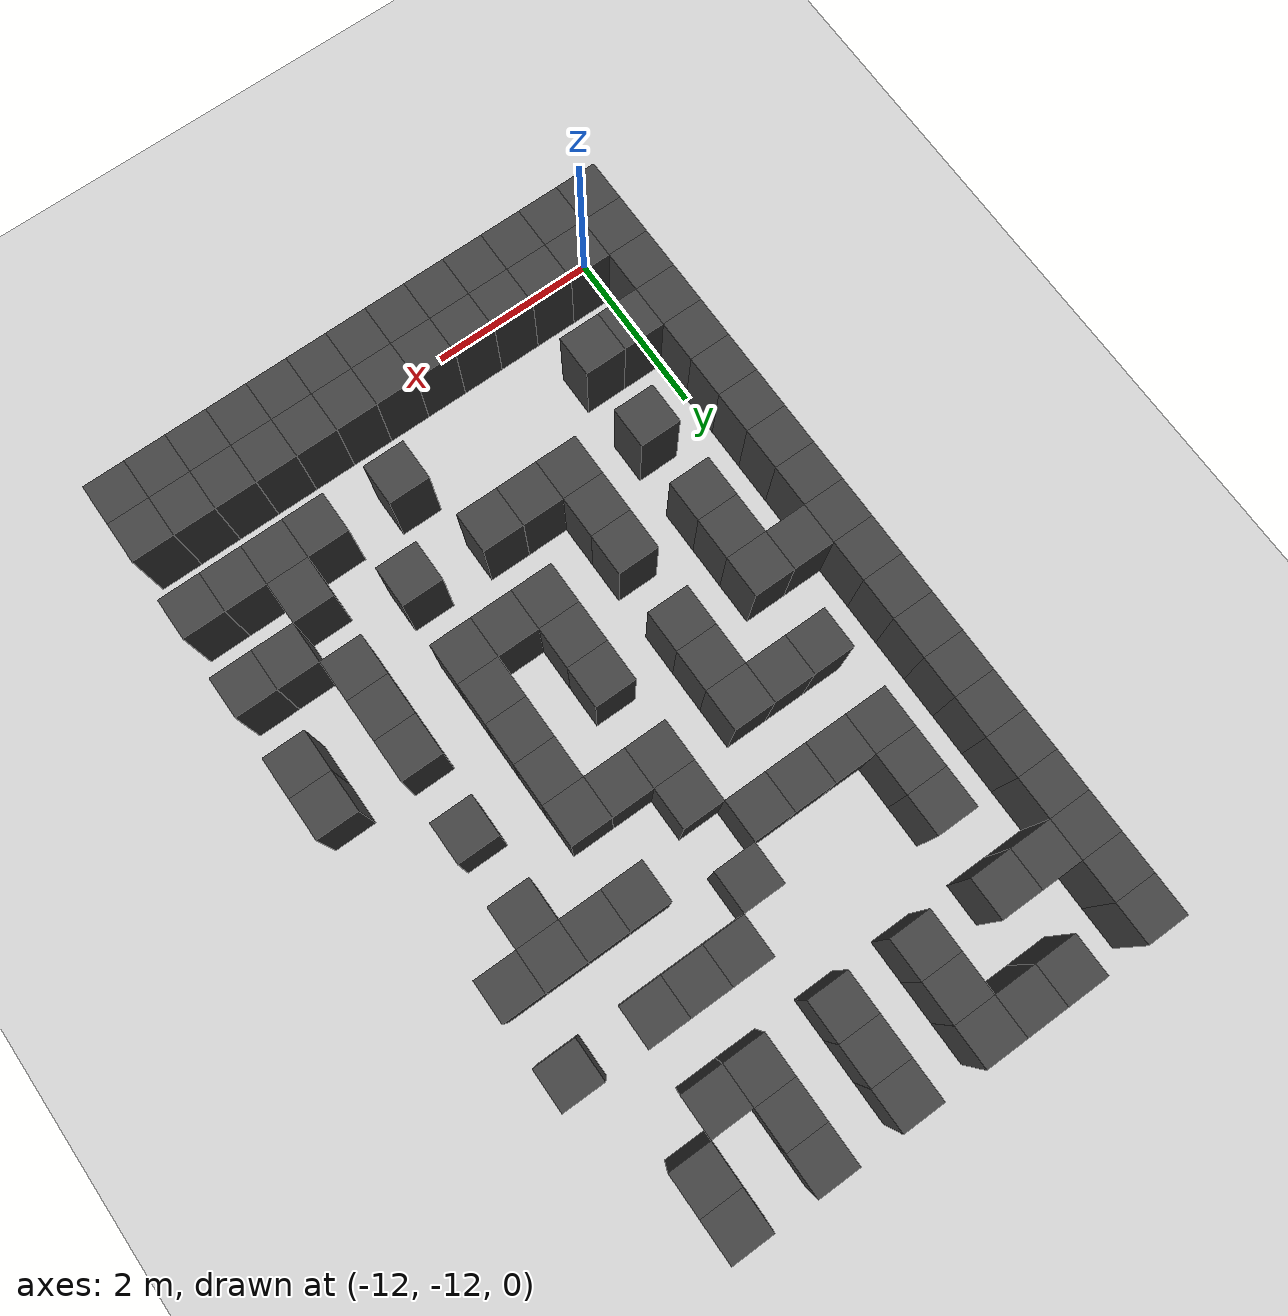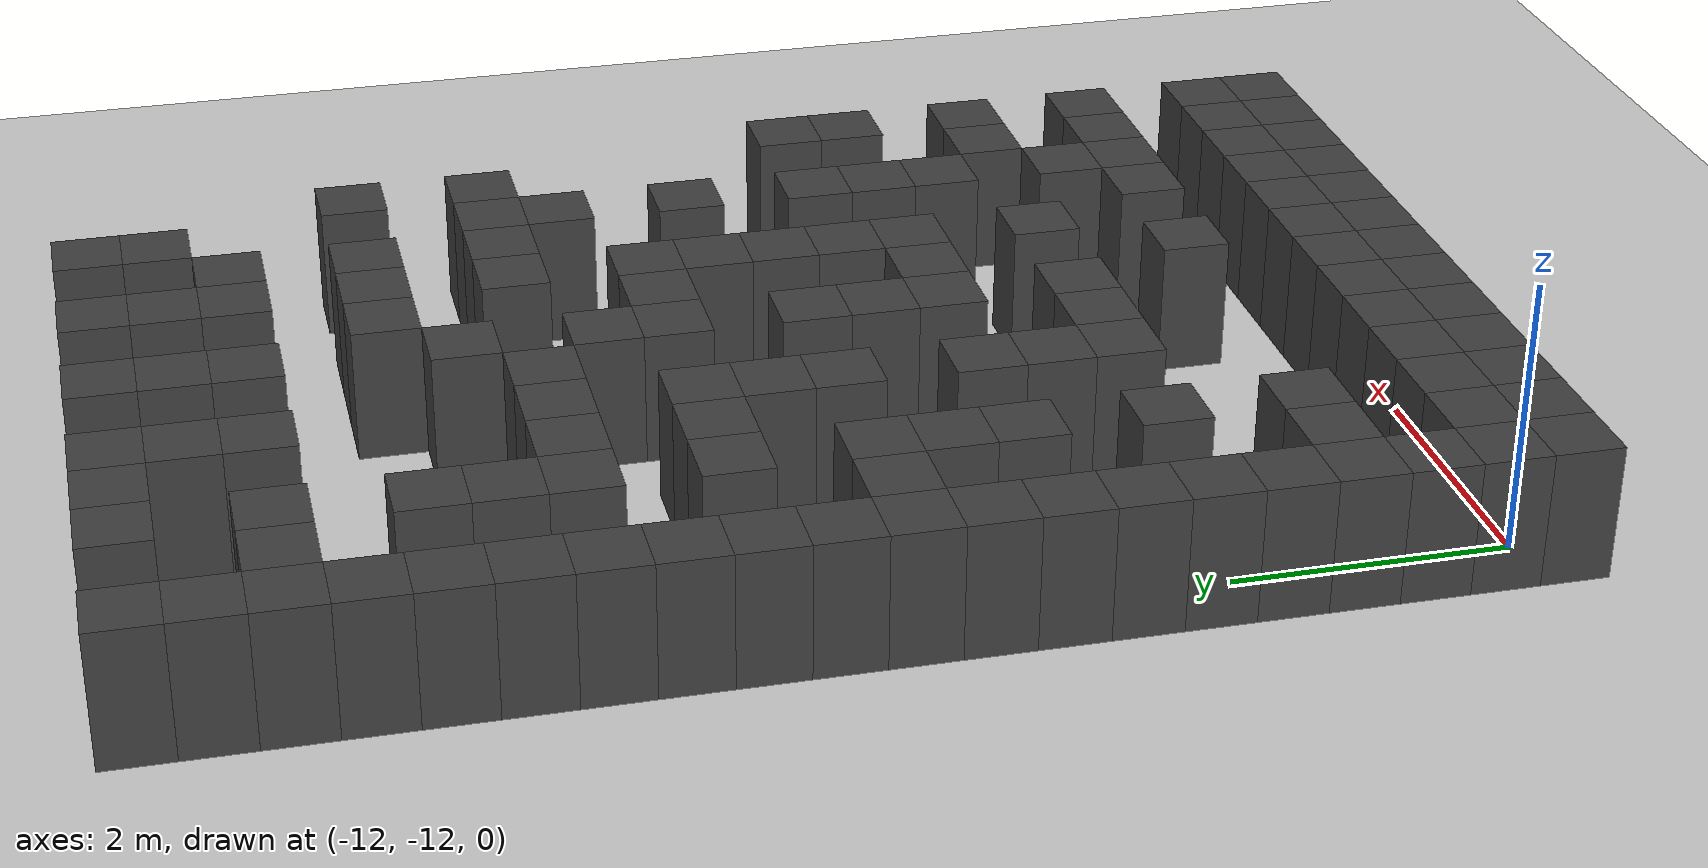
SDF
<sdf version="1.7">
 <world name="map_15293">
  <model name="ground_plane">
   <static>true</static>
   <link name="link">
    <collision name="collision">
     <geometry><plane><normal>0 0 1</normal><size>200 200</size></plane></geometry>
    </collision>
    <visual name="visual">
     <geometry><plane><normal>0 0 1</normal><size>200 200</size></plane></geometry>
     <material><ambient>0.8 0.8 0.8 1</ambient><diffuse>0.8 0.8 0.8 1</diffuse></material>
    </visual>
   </link>
  </model>
  <model name="maze_environment">
   <static>true</static>
   <link name="wall_702">
    <pose>-12.250 -2.750 0.500 0 0 0</pose>
    <collision name="col"><geometry><box><size>0.5 0.5 1.0</size></box></geometry></collision>
    <visual name="vis">
     <geometry><box><size>0.5 0.5 1.0</size></box></geometry>
     <material><ambient>0.15 0.15 0.15 1</ambient><diffuse>0.25 0.25 0.25 1</diffuse></material>
    </visual>
   </link>
   <link name="wall_703">
    <pose>-11.250 -2.750 0.500 0 0 0</pose>
    <collision name="col"><geometry><box><size>0.5 0.5 1.0</size></box></geometry></collision>
    <visual name="vis">
     <geometry><box><size>0.5 0.5 1.0</size></box></geometry>
     <material><ambient>0.15 0.15 0.15 1</ambient><diffuse>0.25 0.25 0.25 1</diffuse></material>
    </visual>
   </link>
   <link name="wall_704">
    <pose>-10.750 -2.750 0.500 0 0 0</pose>
    <collision name="col"><geometry><box><size>0.5 0.5 1.0</size></box></geometry></collision>
    <visual name="vis">
     <geometry><box><size>0.5 0.5 1.0</size></box></geometry>
     <material><ambient>0.15 0.15 0.15 1</ambient><diffuse>0.25 0.25 0.25 1</diffuse></material>
    </visual>
   </link>
   <link name="wall_705">
    <pose>-10.250 -2.750 0.500 0 0 0</pose>
    <collision name="col"><geometry><box><size>0.5 0.5 1.0</size></box></geometry></collision>
    <visual name="vis">
     <geometry><box><size>0.5 0.5 1.0</size></box></geometry>
     <material><ambient>0.15 0.15 0.15 1</ambient><diffuse>0.25 0.25 0.25 1</diffuse></material>
    </visual>
   </link>
   <link name="wall_706">
    <pose>-9.250 -2.750 0.500 0 0 0</pose>
    <collision name="col"><geometry><box><size>0.5 0.5 1.0</size></box></geometry></collision>
    <visual name="vis">
     <geometry><box><size>0.5 0.5 1.0</size></box></geometry>
     <material><ambient>0.15 0.15 0.15 1</ambient><diffuse>0.25 0.25 0.25 1</diffuse></material>
    </visual>
   </link>
   <link name="wall_707">
    <pose>-8.250 -2.750 0.500 0 0 0</pose>
    <collision name="col"><geometry><box><size>0.5 0.5 1.0</size></box></geometry></collision>
    <visual name="vis">
     <geometry><box><size>0.5 0.5 1.0</size></box></geometry>
     <material><ambient>0.15 0.15 0.15 1</ambient><diffuse>0.25 0.25 0.25 1</diffuse></material>
    </visual>
   </link>
   <link name="wall_708">
    <pose>-7.250 -2.750 0.500 0 0 0</pose>
    <collision name="col"><geometry><box><size>0.5 0.5 1.0</size></box></geometry></collision>
    <visual name="vis">
     <geometry><box><size>0.5 0.5 1.0</size></box></geometry>
     <material><ambient>0.15 0.15 0.15 1</ambient><diffuse>0.25 0.25 0.25 1</diffuse></material>
    </visual>
   </link>
   <link name="wall_737">
    <pose>-12.250 -3.250 0.500 0 0 0</pose>
    <collision name="col"><geometry><box><size>0.5 0.5 1.0</size></box></geometry></collision>
    <visual name="vis">
     <geometry><box><size>0.5 0.5 1.0</size></box></geometry>
     <material><ambient>0.15 0.15 0.15 1</ambient><diffuse>0.25 0.25 0.25 1</diffuse></material>
    </visual>
   </link>
   <link name="wall_738">
    <pose>-10.250 -3.250 0.500 0 0 0</pose>
    <collision name="col"><geometry><box><size>0.5 0.5 1.0</size></box></geometry></collision>
    <visual name="vis">
     <geometry><box><size>0.5 0.5 1.0</size></box></geometry>
     <material><ambient>0.15 0.15 0.15 1</ambient><diffuse>0.25 0.25 0.25 1</diffuse></material>
    </visual>
   </link>
   <link name="wall_739">
    <pose>-9.250 -3.250 0.500 0 0 0</pose>
    <collision name="col"><geometry><box><size>0.5 0.5 1.0</size></box></geometry></collision>
    <visual name="vis">
     <geometry><box><size>0.5 0.5 1.0</size></box></geometry>
     <material><ambient>0.15 0.15 0.15 1</ambient><diffuse>0.25 0.25 0.25 1</diffuse></material>
    </visual>
   </link>
   <link name="wall_740">
    <pose>-8.250 -3.250 0.500 0 0 0</pose>
    <collision name="col"><geometry><box><size>0.5 0.5 1.0</size></box></geometry></collision>
    <visual name="vis">
     <geometry><box><size>0.5 0.5 1.0</size></box></geometry>
     <material><ambient>0.15 0.15 0.15 1</ambient><diffuse>0.25 0.25 0.25 1</diffuse></material>
    </visual>
   </link>
   <link name="wall_741">
    <pose>-7.250 -3.250 0.500 0 0 0</pose>
    <collision name="col"><geometry><box><size>0.5 0.5 1.0</size></box></geometry></collision>
    <visual name="vis">
     <geometry><box><size>0.5 0.5 1.0</size></box></geometry>
     <material><ambient>0.15 0.15 0.15 1</ambient><diffuse>0.25 0.25 0.25 1</diffuse></material>
    </visual>
   </link>
   <link name="wall_750">
    <pose>-12.250 -3.750 0.500 0 0 0</pose>
    <collision name="col"><geometry><box><size>0.5 0.5 1.0</size></box></geometry></collision>
    <visual name="vis">
     <geometry><box><size>0.5 0.5 1.0</size></box></geometry>
     <material><ambient>0.15 0.15 0.15 1</ambient><diffuse>0.25 0.25 0.25 1</diffuse></material>
    </visual>
   </link>
   <link name="wall_751">
    <pose>-11.750 -3.750 0.500 0 0 0</pose>
    <collision name="col"><geometry><box><size>0.5 0.5 1.0</size></box></geometry></collision>
    <visual name="vis">
     <geometry><box><size>0.5 0.5 1.0</size></box></geometry>
     <material><ambient>0.15 0.15 0.15 1</ambient><diffuse>0.25 0.25 0.25 1</diffuse></material>
    </visual>
   </link>
   <link name="wall_752">
    <pose>-11.250 -3.750 0.500 0 0 0</pose>
    <collision name="col"><geometry><box><size>0.5 0.5 1.0</size></box></geometry></collision>
    <visual name="vis">
     <geometry><box><size>0.5 0.5 1.0</size></box></geometry>
     <material><ambient>0.15 0.15 0.15 1</ambient><diffuse>0.25 0.25 0.25 1</diffuse></material>
    </visual>
   </link>
   <link name="wall_753">
    <pose>-10.250 -3.750 0.500 0 0 0</pose>
    <collision name="col"><geometry><box><size>0.5 0.5 1.0</size></box></geometry></collision>
    <visual name="vis">
     <geometry><box><size>0.5 0.5 1.0</size></box></geometry>
     <material><ambient>0.15 0.15 0.15 1</ambient><diffuse>0.25 0.25 0.25 1</diffuse></material>
    </visual>
   </link>
   <link name="wall_754">
    <pose>-9.250 -3.750 0.500 0 0 0</pose>
    <collision name="col"><geometry><box><size>0.5 0.5 1.0</size></box></geometry></collision>
    <visual name="vis">
     <geometry><box><size>0.5 0.5 1.0</size></box></geometry>
     <material><ambient>0.15 0.15 0.15 1</ambient><diffuse>0.25 0.25 0.25 1</diffuse></material>
    </visual>
   </link>
   <link name="wall_755">
    <pose>-8.250 -3.750 0.500 0 0 0</pose>
    <collision name="col"><geometry><box><size>0.5 0.5 1.0</size></box></geometry></collision>
    <visual name="vis">
     <geometry><box><size>0.5 0.5 1.0</size></box></geometry>
     <material><ambient>0.15 0.15 0.15 1</ambient><diffuse>0.25 0.25 0.25 1</diffuse></material>
    </visual>
   </link>
   <link name="wall_756">
    <pose>-7.750 -3.750 0.500 0 0 0</pose>
    <collision name="col"><geometry><box><size>0.5 0.5 1.0</size></box></geometry></collision>
    <visual name="vis">
     <geometry><box><size>0.5 0.5 1.0</size></box></geometry>
     <material><ambient>0.15 0.15 0.15 1</ambient><diffuse>0.25 0.25 0.25 1</diffuse></material>
    </visual>
   </link>
   <link name="wall_781">
    <pose>-12.250 -4.250 0.500 0 0 0</pose>
    <collision name="col"><geometry><box><size>0.5 0.5 1.0</size></box></geometry></collision>
    <visual name="vis">
     <geometry><box><size>0.5 0.5 1.0</size></box></geometry>
     <material><ambient>0.15 0.15 0.15 1</ambient><diffuse>0.25 0.25 0.25 1</diffuse></material>
    </visual>
   </link>
   <link name="wall_792">
    <pose>-12.250 -4.750 0.500 0 0 0</pose>
    <collision name="col"><geometry><box><size>0.5 0.5 1.0</size></box></geometry></collision>
    <visual name="vis">
     <geometry><box><size>0.5 0.5 1.0</size></box></geometry>
     <material><ambient>0.15 0.15 0.15 1</ambient><diffuse>0.25 0.25 0.25 1</diffuse></material>
    </visual>
   </link>
   <link name="wall_793">
    <pose>-11.250 -4.750 0.500 0 0 0</pose>
    <collision name="col"><geometry><box><size>0.5 0.5 1.0</size></box></geometry></collision>
    <visual name="vis">
     <geometry><box><size>0.5 0.5 1.0</size></box></geometry>
     <material><ambient>0.15 0.15 0.15 1</ambient><diffuse>0.25 0.25 0.25 1</diffuse></material>
    </visual>
   </link>
   <link name="wall_794">
    <pose>-8.750 -4.750 0.500 0 0 0</pose>
    <collision name="col"><geometry><box><size>0.5 0.5 1.0</size></box></geometry></collision>
    <visual name="vis">
     <geometry><box><size>0.5 0.5 1.0</size></box></geometry>
     <material><ambient>0.15 0.15 0.15 1</ambient><diffuse>0.25 0.25 0.25 1</diffuse></material>
    </visual>
   </link>
   <link name="wall_795">
    <pose>-8.250 -4.750 0.500 0 0 0</pose>
    <collision name="col"><geometry><box><size>0.5 0.5 1.0</size></box></geometry></collision>
    <visual name="vis">
     <geometry><box><size>0.5 0.5 1.0</size></box></geometry>
     <material><ambient>0.15 0.15 0.15 1</ambient><diffuse>0.25 0.25 0.25 1</diffuse></material>
    </visual>
   </link>
   <link name="wall_796">
    <pose>-7.750 -4.750 0.500 0 0 0</pose>
    <collision name="col"><geometry><box><size>0.5 0.5 1.0</size></box></geometry></collision>
    <visual name="vis">
     <geometry><box><size>0.5 0.5 1.0</size></box></geometry>
     <material><ambient>0.15 0.15 0.15 1</ambient><diffuse>0.25 0.25 0.25 1</diffuse></material>
    </visual>
   </link>
   <link name="wall_797">
    <pose>-6.750 -4.750 0.500 0 0 0</pose>
    <collision name="col"><geometry><box><size>0.5 0.5 1.0</size></box></geometry></collision>
    <visual name="vis">
     <geometry><box><size>0.5 0.5 1.0</size></box></geometry>
     <material><ambient>0.15 0.15 0.15 1</ambient><diffuse>0.25 0.25 0.25 1</diffuse></material>
    </visual>
   </link>
   <link name="wall_819">
    <pose>-12.250 -5.250 0.500 0 0 0</pose>
    <collision name="col"><geometry><box><size>0.5 0.5 1.0</size></box></geometry></collision>
    <visual name="vis">
     <geometry><box><size>0.5 0.5 1.0</size></box></geometry>
     <material><ambient>0.15 0.15 0.15 1</ambient><diffuse>0.25 0.25 0.25 1</diffuse></material>
    </visual>
   </link>
   <link name="wall_820">
    <pose>-11.250 -5.250 0.500 0 0 0</pose>
    <collision name="col"><geometry><box><size>0.5 0.5 1.0</size></box></geometry></collision>
    <visual name="vis">
     <geometry><box><size>0.5 0.5 1.0</size></box></geometry>
     <material><ambient>0.15 0.15 0.15 1</ambient><diffuse>0.25 0.25 0.25 1</diffuse></material>
    </visual>
   </link>
   <link name="wall_821">
    <pose>-9.250 -5.250 0.500 0 0 0</pose>
    <collision name="col"><geometry><box><size>0.5 0.5 1.0</size></box></geometry></collision>
    <visual name="vis">
     <geometry><box><size>0.5 0.5 1.0</size></box></geometry>
     <material><ambient>0.15 0.15 0.15 1</ambient><diffuse>0.25 0.25 0.25 1</diffuse></material>
    </visual>
   </link>
   <link name="wall_835">
    <pose>-12.250 -5.750 0.500 0 0 0</pose>
    <collision name="col"><geometry><box><size>0.5 0.5 1.0</size></box></geometry></collision>
    <visual name="vis">
     <geometry><box><size>0.5 0.5 1.0</size></box></geometry>
     <material><ambient>0.15 0.15 0.15 1</ambient><diffuse>0.25 0.25 0.25 1</diffuse></material>
    </visual>
   </link>
   <link name="wall_836">
    <pose>-11.250 -5.750 0.500 0 0 0</pose>
    <collision name="col"><geometry><box><size>0.5 0.5 1.0</size></box></geometry></collision>
    <visual name="vis">
     <geometry><box><size>0.5 0.5 1.0</size></box></geometry>
     <material><ambient>0.15 0.15 0.15 1</ambient><diffuse>0.25 0.25 0.25 1</diffuse></material>
    </visual>
   </link>
   <link name="wall_837">
    <pose>-10.750 -5.750 0.500 0 0 0</pose>
    <collision name="col"><geometry><box><size>0.5 0.5 1.0</size></box></geometry></collision>
    <visual name="vis">
     <geometry><box><size>0.5 0.5 1.0</size></box></geometry>
     <material><ambient>0.15 0.15 0.15 1</ambient><diffuse>0.25 0.25 0.25 1</diffuse></material>
    </visual>
   </link>
   <link name="wall_838">
    <pose>-10.250 -5.750 0.500 0 0 0</pose>
    <collision name="col"><geometry><box><size>0.5 0.5 1.0</size></box></geometry></collision>
    <visual name="vis">
     <geometry><box><size>0.5 0.5 1.0</size></box></geometry>
     <material><ambient>0.15 0.15 0.15 1</ambient><diffuse>0.25 0.25 0.25 1</diffuse></material>
    </visual>
   </link>
   <link name="wall_839">
    <pose>-9.750 -5.750 0.500 0 0 0</pose>
    <collision name="col"><geometry><box><size>0.5 0.5 1.0</size></box></geometry></collision>
    <visual name="vis">
     <geometry><box><size>0.5 0.5 1.0</size></box></geometry>
     <material><ambient>0.15 0.15 0.15 1</ambient><diffuse>0.25 0.25 0.25 1</diffuse></material>
    </visual>
   </link>
   <link name="wall_840">
    <pose>-8.250 -5.750 0.500 0 0 0</pose>
    <collision name="col"><geometry><box><size>0.5 0.5 1.0</size></box></geometry></collision>
    <visual name="vis">
     <geometry><box><size>0.5 0.5 1.0</size></box></geometry>
     <material><ambient>0.15 0.15 0.15 1</ambient><diffuse>0.25 0.25 0.25 1</diffuse></material>
    </visual>
   </link>
   <link name="wall_841">
    <pose>-7.750 -5.750 0.500 0 0 0</pose>
    <collision name="col"><geometry><box><size>0.5 0.5 1.0</size></box></geometry></collision>
    <visual name="vis">
     <geometry><box><size>0.5 0.5 1.0</size></box></geometry>
     <material><ambient>0.15 0.15 0.15 1</ambient><diffuse>0.25 0.25 0.25 1</diffuse></material>
    </visual>
   </link>
   <link name="wall_842">
    <pose>-7.250 -5.750 0.500 0 0 0</pose>
    <collision name="col"><geometry><box><size>0.5 0.5 1.0</size></box></geometry></collision>
    <visual name="vis">
     <geometry><box><size>0.5 0.5 1.0</size></box></geometry>
     <material><ambient>0.15 0.15 0.15 1</ambient><diffuse>0.25 0.25 0.25 1</diffuse></material>
    </visual>
   </link>
   <link name="wall_843">
    <pose>-6.750 -5.750 0.500 0 0 0</pose>
    <collision name="col"><geometry><box><size>0.5 0.5 1.0</size></box></geometry></collision>
    <visual name="vis">
     <geometry><box><size>0.5 0.5 1.0</size></box></geometry>
     <material><ambient>0.15 0.15 0.15 1</ambient><diffuse>0.25 0.25 0.25 1</diffuse></material>
    </visual>
   </link>
   <link name="wall_868">
    <pose>-12.250 -6.250 0.500 0 0 0</pose>
    <collision name="col"><geometry><box><size>0.5 0.5 1.0</size></box></geometry></collision>
    <visual name="vis">
     <geometry><box><size>0.5 0.5 1.0</size></box></geometry>
     <material><ambient>0.15 0.15 0.15 1</ambient><diffuse>0.25 0.25 0.25 1</diffuse></material>
    </visual>
   </link>
   <link name="wall_869">
    <pose>-9.250 -6.250 0.500 0 0 0</pose>
    <collision name="col"><geometry><box><size>0.5 0.5 1.0</size></box></geometry></collision>
    <visual name="vis">
     <geometry><box><size>0.5 0.5 1.0</size></box></geometry>
     <material><ambient>0.15 0.15 0.15 1</ambient><diffuse>0.25 0.25 0.25 1</diffuse></material>
    </visual>
   </link>
   <link name="wall_870">
    <pose>-7.250 -6.250 0.500 0 0 0</pose>
    <collision name="col"><geometry><box><size>0.5 0.5 1.0</size></box></geometry></collision>
    <visual name="vis">
     <geometry><box><size>0.5 0.5 1.0</size></box></geometry>
     <material><ambient>0.15 0.15 0.15 1</ambient><diffuse>0.25 0.25 0.25 1</diffuse></material>
    </visual>
   </link>
   <link name="wall_880">
    <pose>-12.250 -6.750 0.500 0 0 0</pose>
    <collision name="col"><geometry><box><size>0.5 0.5 1.0</size></box></geometry></collision>
    <visual name="vis">
     <geometry><box><size>0.5 0.5 1.0</size></box></geometry>
     <material><ambient>0.15 0.15 0.15 1</ambient><diffuse>0.25 0.25 0.25 1</diffuse></material>
    </visual>
   </link>
   <link name="wall_881">
    <pose>-11.250 -6.750 0.500 0 0 0</pose>
    <collision name="col"><geometry><box><size>0.5 0.5 1.0</size></box></geometry></collision>
    <visual name="vis">
     <geometry><box><size>0.5 0.5 1.0</size></box></geometry>
     <material><ambient>0.15 0.15 0.15 1</ambient><diffuse>0.25 0.25 0.25 1</diffuse></material>
    </visual>
   </link>
   <link name="wall_882">
    <pose>-10.750 -6.750 0.500 0 0 0</pose>
    <collision name="col"><geometry><box><size>0.5 0.5 1.0</size></box></geometry></collision>
    <visual name="vis">
     <geometry><box><size>0.5 0.5 1.0</size></box></geometry>
     <material><ambient>0.15 0.15 0.15 1</ambient><diffuse>0.25 0.25 0.25 1</diffuse></material>
    </visual>
   </link>
   <link name="wall_883">
    <pose>-10.250 -6.750 0.500 0 0 0</pose>
    <collision name="col"><geometry><box><size>0.5 0.5 1.0</size></box></geometry></collision>
    <visual name="vis">
     <geometry><box><size>0.5 0.5 1.0</size></box></geometry>
     <material><ambient>0.15 0.15 0.15 1</ambient><diffuse>0.25 0.25 0.25 1</diffuse></material>
    </visual>
   </link>
   <link name="wall_884">
    <pose>-9.250 -6.750 0.500 0 0 0</pose>
    <collision name="col"><geometry><box><size>0.5 0.5 1.0</size></box></geometry></collision>
    <visual name="vis">
     <geometry><box><size>0.5 0.5 1.0</size></box></geometry>
     <material><ambient>0.15 0.15 0.15 1</ambient><diffuse>0.25 0.25 0.25 1</diffuse></material>
    </visual>
   </link>
   <link name="wall_885">
    <pose>-8.750 -6.750 0.500 0 0 0</pose>
    <collision name="col"><geometry><box><size>0.5 0.5 1.0</size></box></geometry></collision>
    <visual name="vis">
     <geometry><box><size>0.5 0.5 1.0</size></box></geometry>
     <material><ambient>0.15 0.15 0.15 1</ambient><diffuse>0.25 0.25 0.25 1</diffuse></material>
    </visual>
   </link>
   <link name="wall_886">
    <pose>-8.250 -6.750 0.500 0 0 0</pose>
    <collision name="col"><geometry><box><size>0.5 0.5 1.0</size></box></geometry></collision>
    <visual name="vis">
     <geometry><box><size>0.5 0.5 1.0</size></box></geometry>
     <material><ambient>0.15 0.15 0.15 1</ambient><diffuse>0.25 0.25 0.25 1</diffuse></material>
    </visual>
   </link>
   <link name="wall_914">
    <pose>-12.250 -7.250 0.500 0 0 0</pose>
    <collision name="col"><geometry><box><size>0.5 0.5 1.0</size></box></geometry></collision>
    <visual name="vis">
     <geometry><box><size>0.5 0.5 1.0</size></box></geometry>
     <material><ambient>0.15 0.15 0.15 1</ambient><diffuse>0.25 0.25 0.25 1</diffuse></material>
    </visual>
   </link>
   <link name="wall_915">
    <pose>-10.250 -7.250 0.500 0 0 0</pose>
    <collision name="col"><geometry><box><size>0.5 0.5 1.0</size></box></geometry></collision>
    <visual name="vis">
     <geometry><box><size>0.5 0.5 1.0</size></box></geometry>
     <material><ambient>0.15 0.15 0.15 1</ambient><diffuse>0.25 0.25 0.25 1</diffuse></material>
    </visual>
   </link>
   <link name="wall_916">
    <pose>-8.250 -7.250 0.500 0 0 0</pose>
    <collision name="col"><geometry><box><size>0.5 0.5 1.0</size></box></geometry></collision>
    <visual name="vis">
     <geometry><box><size>0.5 0.5 1.0</size></box></geometry>
     <material><ambient>0.15 0.15 0.15 1</ambient><diffuse>0.25 0.25 0.25 1</diffuse></material>
    </visual>
   </link>
   <link name="wall_917">
    <pose>-7.250 -7.250 0.500 0 0 0</pose>
    <collision name="col"><geometry><box><size>0.5 0.5 1.0</size></box></geometry></collision>
    <visual name="vis">
     <geometry><box><size>0.5 0.5 1.0</size></box></geometry>
     <material><ambient>0.15 0.15 0.15 1</ambient><diffuse>0.25 0.25 0.25 1</diffuse></material>
    </visual>
   </link>
   <link name="wall_926">
    <pose>-12.250 -7.750 0.500 0 0 0</pose>
    <collision name="col"><geometry><box><size>0.5 0.5 1.0</size></box></geometry></collision>
    <visual name="vis">
     <geometry><box><size>0.5 0.5 1.0</size></box></geometry>
     <material><ambient>0.15 0.15 0.15 1</ambient><diffuse>0.25 0.25 0.25 1</diffuse></material>
    </visual>
   </link>
   <link name="wall_927">
    <pose>-11.750 -7.750 0.500 0 0 0</pose>
    <collision name="col"><geometry><box><size>0.5 0.5 1.0</size></box></geometry></collision>
    <visual name="vis">
     <geometry><box><size>0.5 0.5 1.0</size></box></geometry>
     <material><ambient>0.15 0.15 0.15 1</ambient><diffuse>0.25 0.25 0.25 1</diffuse></material>
    </visual>
   </link>
   <link name="wall_928">
    <pose>-11.250 -7.750 0.500 0 0 0</pose>
    <collision name="col"><geometry><box><size>0.5 0.5 1.0</size></box></geometry></collision>
    <visual name="vis">
     <geometry><box><size>0.5 0.5 1.0</size></box></geometry>
     <material><ambient>0.15 0.15 0.15 1</ambient><diffuse>0.25 0.25 0.25 1</diffuse></material>
    </visual>
   </link>
   <link name="wall_929">
    <pose>-10.250 -7.750 0.500 0 0 0</pose>
    <collision name="col"><geometry><box><size>0.5 0.5 1.0</size></box></geometry></collision>
    <visual name="vis">
     <geometry><box><size>0.5 0.5 1.0</size></box></geometry>
     <material><ambient>0.15 0.15 0.15 1</ambient><diffuse>0.25 0.25 0.25 1</diffuse></material>
    </visual>
   </link>
   <link name="wall_930">
    <pose>-9.250 -7.750 0.500 0 0 0</pose>
    <collision name="col"><geometry><box><size>0.5 0.5 1.0</size></box></geometry></collision>
    <visual name="vis">
     <geometry><box><size>0.5 0.5 1.0</size></box></geometry>
     <material><ambient>0.15 0.15 0.15 1</ambient><diffuse>0.25 0.25 0.25 1</diffuse></material>
    </visual>
   </link>
   <link name="wall_931">
    <pose>-8.250 -7.750 0.500 0 0 0</pose>
    <collision name="col"><geometry><box><size>0.5 0.5 1.0</size></box></geometry></collision>
    <visual name="vis">
     <geometry><box><size>0.5 0.5 1.0</size></box></geometry>
     <material><ambient>0.15 0.15 0.15 1</ambient><diffuse>0.25 0.25 0.25 1</diffuse></material>
    </visual>
   </link>
   <link name="wall_962">
    <pose>-12.250 -8.250 0.500 0 0 0</pose>
    <collision name="col"><geometry><box><size>0.5 0.5 1.0</size></box></geometry></collision>
    <visual name="vis">
     <geometry><box><size>0.5 0.5 1.0</size></box></geometry>
     <material><ambient>0.15 0.15 0.15 1</ambient><diffuse>0.25 0.25 0.25 1</diffuse></material>
    </visual>
   </link>
   <link name="wall_963">
    <pose>-11.250 -8.250 0.500 0 0 0</pose>
    <collision name="col"><geometry><box><size>0.5 0.5 1.0</size></box></geometry></collision>
    <visual name="vis">
     <geometry><box><size>0.5 0.5 1.0</size></box></geometry>
     <material><ambient>0.15 0.15 0.15 1</ambient><diffuse>0.25 0.25 0.25 1</diffuse></material>
    </visual>
   </link>
   <link name="wall_964">
    <pose>-9.250 -8.250 0.500 0 0 0</pose>
    <collision name="col"><geometry><box><size>0.5 0.5 1.0</size></box></geometry></collision>
    <visual name="vis">
     <geometry><box><size>0.5 0.5 1.0</size></box></geometry>
     <material><ambient>0.15 0.15 0.15 1</ambient><diffuse>0.25 0.25 0.25 1</diffuse></material>
    </visual>
   </link>
   <link name="wall_965">
    <pose>-8.250 -8.250 0.500 0 0 0</pose>
    <collision name="col"><geometry><box><size>0.5 0.5 1.0</size></box></geometry></collision>
    <visual name="vis">
     <geometry><box><size>0.5 0.5 1.0</size></box></geometry>
     <material><ambient>0.15 0.15 0.15 1</ambient><diffuse>0.25 0.25 0.25 1</diffuse></material>
    </visual>
   </link>
   <link name="wall_966">
    <pose>-7.250 -8.250 0.500 0 0 0</pose>
    <collision name="col"><geometry><box><size>0.5 0.5 1.0</size></box></geometry></collision>
    <visual name="vis">
     <geometry><box><size>0.5 0.5 1.0</size></box></geometry>
     <material><ambient>0.15 0.15 0.15 1</ambient><diffuse>0.25 0.25 0.25 1</diffuse></material>
    </visual>
   </link>
   <link name="wall_967">
    <pose>-6.250 -8.250 0.500 0 0 0</pose>
    <collision name="col"><geometry><box><size>0.5 0.5 1.0</size></box></geometry></collision>
    <visual name="vis">
     <geometry><box><size>0.5 0.5 1.0</size></box></geometry>
     <material><ambient>0.15 0.15 0.15 1</ambient><diffuse>0.25 0.25 0.25 1</diffuse></material>
    </visual>
   </link>
   <link name="wall_975">
    <pose>-12.250 -8.750 0.500 0 0 0</pose>
    <collision name="col"><geometry><box><size>0.5 0.5 1.0</size></box></geometry></collision>
    <visual name="vis">
     <geometry><box><size>0.5 0.5 1.0</size></box></geometry>
     <material><ambient>0.15 0.15 0.15 1</ambient><diffuse>0.25 0.25 0.25 1</diffuse></material>
    </visual>
   </link>
   <link name="wall_976">
    <pose>-11.250 -8.750 0.500 0 0 0</pose>
    <collision name="col"><geometry><box><size>0.5 0.5 1.0</size></box></geometry></collision>
    <visual name="vis">
     <geometry><box><size>0.5 0.5 1.0</size></box></geometry>
     <material><ambient>0.15 0.15 0.15 1</ambient><diffuse>0.25 0.25 0.25 1</diffuse></material>
    </visual>
   </link>
   <link name="wall_977">
    <pose>-10.250 -8.750 0.500 0 0 0</pose>
    <collision name="col"><geometry><box><size>0.5 0.5 1.0</size></box></geometry></collision>
    <visual name="vis">
     <geometry><box><size>0.5 0.5 1.0</size></box></geometry>
     <material><ambient>0.15 0.15 0.15 1</ambient><diffuse>0.25 0.25 0.25 1</diffuse></material>
    </visual>
   </link>
   <link name="wall_978">
    <pose>-9.250 -8.750 0.500 0 0 0</pose>
    <collision name="col"><geometry><box><size>0.5 0.5 1.0</size></box></geometry></collision>
    <visual name="vis">
     <geometry><box><size>0.5 0.5 1.0</size></box></geometry>
     <material><ambient>0.15 0.15 0.15 1</ambient><diffuse>0.25 0.25 0.25 1</diffuse></material>
    </visual>
   </link>
   <link name="wall_979">
    <pose>-8.750 -8.750 0.500 0 0 0</pose>
    <collision name="col"><geometry><box><size>0.5 0.5 1.0</size></box></geometry></collision>
    <visual name="vis">
     <geometry><box><size>0.5 0.5 1.0</size></box></geometry>
     <material><ambient>0.15 0.15 0.15 1</ambient><diffuse>0.25 0.25 0.25 1</diffuse></material>
    </visual>
   </link>
   <link name="wall_980">
    <pose>-8.250 -8.750 0.500 0 0 0</pose>
    <collision name="col"><geometry><box><size>0.5 0.5 1.0</size></box></geometry></collision>
    <visual name="vis">
     <geometry><box><size>0.5 0.5 1.0</size></box></geometry>
     <material><ambient>0.15 0.15 0.15 1</ambient><diffuse>0.25 0.25 0.25 1</diffuse></material>
    </visual>
   </link>
   <link name="wall_981">
    <pose>-7.250 -8.750 0.500 0 0 0</pose>
    <collision name="col"><geometry><box><size>0.5 0.5 1.0</size></box></geometry></collision>
    <visual name="vis">
     <geometry><box><size>0.5 0.5 1.0</size></box></geometry>
     <material><ambient>0.15 0.15 0.15 1</ambient><diffuse>0.25 0.25 0.25 1</diffuse></material>
    </visual>
   </link>
   <link name="wall_982">
    <pose>-6.250 -8.750 0.500 0 0 0</pose>
    <collision name="col"><geometry><box><size>0.5 0.5 1.0</size></box></geometry></collision>
    <visual name="vis">
     <geometry><box><size>0.5 0.5 1.0</size></box></geometry>
     <material><ambient>0.15 0.15 0.15 1</ambient><diffuse>0.25 0.25 0.25 1</diffuse></material>
    </visual>
   </link>
   <link name="wall_1010">
    <pose>-12.250 -9.250 0.500 0 0 0</pose>
    <collision name="col"><geometry><box><size>0.5 0.5 1.0</size></box></geometry></collision>
    <visual name="vis">
     <geometry><box><size>0.5 0.5 1.0</size></box></geometry>
     <material><ambient>0.15 0.15 0.15 1</ambient><diffuse>0.25 0.25 0.25 1</diffuse></material>
    </visual>
   </link>
   <link name="wall_1011">
    <pose>-10.250 -9.250 0.500 0 0 0</pose>
    <collision name="col"><geometry><box><size>0.5 0.5 1.0</size></box></geometry></collision>
    <visual name="vis">
     <geometry><box><size>0.5 0.5 1.0</size></box></geometry>
     <material><ambient>0.15 0.15 0.15 1</ambient><diffuse>0.25 0.25 0.25 1</diffuse></material>
    </visual>
   </link>
   <link name="wall_1012">
    <pose>-7.250 -9.250 0.500 0 0 0</pose>
    <collision name="col"><geometry><box><size>0.5 0.5 1.0</size></box></geometry></collision>
    <visual name="vis">
     <geometry><box><size>0.5 0.5 1.0</size></box></geometry>
     <material><ambient>0.15 0.15 0.15 1</ambient><diffuse>0.25 0.25 0.25 1</diffuse></material>
    </visual>
   </link>
   <link name="wall_1023">
    <pose>-12.250 -9.750 0.500 0 0 0</pose>
    <collision name="col"><geometry><box><size>0.5 0.5 1.0</size></box></geometry></collision>
    <visual name="vis">
     <geometry><box><size>0.5 0.5 1.0</size></box></geometry>
     <material><ambient>0.15 0.15 0.15 1</ambient><diffuse>0.25 0.25 0.25 1</diffuse></material>
    </visual>
   </link>
   <link name="wall_1024">
    <pose>-11.250 -9.750 0.500 0 0 0</pose>
    <collision name="col"><geometry><box><size>0.5 0.5 1.0</size></box></geometry></collision>
    <visual name="vis">
     <geometry><box><size>0.5 0.5 1.0</size></box></geometry>
     <material><ambient>0.15 0.15 0.15 1</ambient><diffuse>0.25 0.25 0.25 1</diffuse></material>
    </visual>
   </link>
   <link name="wall_1025">
    <pose>-10.250 -9.750 0.500 0 0 0</pose>
    <collision name="col"><geometry><box><size>0.5 0.5 1.0</size></box></geometry></collision>
    <visual name="vis">
     <geometry><box><size>0.5 0.5 1.0</size></box></geometry>
     <material><ambient>0.15 0.15 0.15 1</ambient><diffuse>0.25 0.25 0.25 1</diffuse></material>
    </visual>
   </link>
   <link name="wall_1026">
    <pose>-9.750 -9.750 0.500 0 0 0</pose>
    <collision name="col"><geometry><box><size>0.5 0.5 1.0</size></box></geometry></collision>
    <visual name="vis">
     <geometry><box><size>0.5 0.5 1.0</size></box></geometry>
     <material><ambient>0.15 0.15 0.15 1</ambient><diffuse>0.25 0.25 0.25 1</diffuse></material>
    </visual>
   </link>
   <link name="wall_1027">
    <pose>-9.250 -9.750 0.500 0 0 0</pose>
    <collision name="col"><geometry><box><size>0.5 0.5 1.0</size></box></geometry></collision>
    <visual name="vis">
     <geometry><box><size>0.5 0.5 1.0</size></box></geometry>
     <material><ambient>0.15 0.15 0.15 1</ambient><diffuse>0.25 0.25 0.25 1</diffuse></material>
    </visual>
   </link>
   <link name="wall_1028">
    <pose>-8.250 -9.750 0.500 0 0 0</pose>
    <collision name="col"><geometry><box><size>0.5 0.5 1.0</size></box></geometry></collision>
    <visual name="vis">
     <geometry><box><size>0.5 0.5 1.0</size></box></geometry>
     <material><ambient>0.15 0.15 0.15 1</ambient><diffuse>0.25 0.25 0.25 1</diffuse></material>
    </visual>
   </link>
   <link name="wall_1029">
    <pose>-6.750 -9.750 0.500 0 0 0</pose>
    <collision name="col"><geometry><box><size>0.5 0.5 1.0</size></box></geometry></collision>
    <visual name="vis">
     <geometry><box><size>0.5 0.5 1.0</size></box></geometry>
     <material><ambient>0.15 0.15 0.15 1</ambient><diffuse>0.25 0.25 0.25 1</diffuse></material>
    </visual>
   </link>
   <link name="wall_1030">
    <pose>-6.250 -9.750 0.500 0 0 0</pose>
    <collision name="col"><geometry><box><size>0.5 0.5 1.0</size></box></geometry></collision>
    <visual name="vis">
     <geometry><box><size>0.5 0.5 1.0</size></box></geometry>
     <material><ambient>0.15 0.15 0.15 1</ambient><diffuse>0.25 0.25 0.25 1</diffuse></material>
    </visual>
   </link>
   <link name="wall_1054">
    <pose>-12.250 -10.250 0.500 0 0 0</pose>
    <collision name="col"><geometry><box><size>0.5 0.5 1.0</size></box></geometry></collision>
    <visual name="vis">
     <geometry><box><size>0.5 0.5 1.0</size></box></geometry>
     <material><ambient>0.15 0.15 0.15 1</ambient><diffuse>0.25 0.25 0.25 1</diffuse></material>
    </visual>
   </link>
   <link name="wall_1055">
    <pose>-7.250 -10.250 0.500 0 0 0</pose>
    <collision name="col"><geometry><box><size>0.5 0.5 1.0</size></box></geometry></collision>
    <visual name="vis">
     <geometry><box><size>0.5 0.5 1.0</size></box></geometry>
     <material><ambient>0.15 0.15 0.15 1</ambient><diffuse>0.25 0.25 0.25 1</diffuse></material>
    </visual>
   </link>
   <link name="wall_1068">
    <pose>-12.250 -10.750 0.500 0 0 0</pose>
    <collision name="col"><geometry><box><size>0.5 0.5 1.0</size></box></geometry></collision>
    <visual name="vis">
     <geometry><box><size>0.5 0.5 1.0</size></box></geometry>
     <material><ambient>0.15 0.15 0.15 1</ambient><diffuse>0.25 0.25 0.25 1</diffuse></material>
    </visual>
   </link>
   <link name="wall_1069">
    <pose>-11.750 -10.750 0.500 0 0 0</pose>
    <collision name="col"><geometry><box><size>0.5 0.5 1.0</size></box></geometry></collision>
    <visual name="vis">
     <geometry><box><size>0.5 0.5 1.0</size></box></geometry>
     <material><ambient>0.15 0.15 0.15 1</ambient><diffuse>0.25 0.25 0.25 1</diffuse></material>
    </visual>
   </link>
   <link name="wall_1070">
    <pose>-11.250 -10.750 0.500 0 0 0</pose>
    <collision name="col"><geometry><box><size>0.5 0.5 1.0</size></box></geometry></collision>
    <visual name="vis">
     <geometry><box><size>0.5 0.5 1.0</size></box></geometry>
     <material><ambient>0.15 0.15 0.15 1</ambient><diffuse>0.25 0.25 0.25 1</diffuse></material>
    </visual>
   </link>
   <link name="wall_1071">
    <pose>-8.750 -10.750 0.500 0 0 0</pose>
    <collision name="col"><geometry><box><size>0.5 0.5 1.0</size></box></geometry></collision>
    <visual name="vis">
     <geometry><box><size>0.5 0.5 1.0</size></box></geometry>
     <material><ambient>0.15 0.15 0.15 1</ambient><diffuse>0.25 0.25 0.25 1</diffuse></material>
    </visual>
   </link>
   <link name="wall_1072">
    <pose>-7.750 -10.750 0.500 0 0 0</pose>
    <collision name="col"><geometry><box><size>0.5 0.5 1.0</size></box></geometry></collision>
    <visual name="vis">
     <geometry><box><size>0.5 0.5 1.0</size></box></geometry>
     <material><ambient>0.15 0.15 0.15 1</ambient><diffuse>0.25 0.25 0.25 1</diffuse></material>
    </visual>
   </link>
   <link name="wall_1073">
    <pose>-7.250 -10.750 0.500 0 0 0</pose>
    <collision name="col"><geometry><box><size>0.5 0.5 1.0</size></box></geometry></collision>
    <visual name="vis">
     <geometry><box><size>0.5 0.5 1.0</size></box></geometry>
     <material><ambient>0.15 0.15 0.15 1</ambient><diffuse>0.25 0.25 0.25 1</diffuse></material>
    </visual>
   </link>
   <link name="wall_1074">
    <pose>-6.750 -10.750 0.500 0 0 0</pose>
    <collision name="col"><geometry><box><size>0.5 0.5 1.0</size></box></geometry></collision>
    <visual name="vis">
     <geometry><box><size>0.5 0.5 1.0</size></box></geometry>
     <material><ambient>0.15 0.15 0.15 1</ambient><diffuse>0.25 0.25 0.25 1</diffuse></material>
    </visual>
   </link>
   <link name="wall_1075">
    <pose>-6.250 -10.750 0.500 0 0 0</pose>
    <collision name="col"><geometry><box><size>0.5 0.5 1.0</size></box></geometry></collision>
    <visual name="vis">
     <geometry><box><size>0.5 0.5 1.0</size></box></geometry>
     <material><ambient>0.15 0.15 0.15 1</ambient><diffuse>0.25 0.25 0.25 1</diffuse></material>
    </visual>
   </link>
   <link name="wall_1101">
    <pose>-12.250 -11.250 0.500 0 0 0</pose>
    <collision name="col"><geometry><box><size>0.5 0.5 1.0</size></box></geometry></collision>
    <visual name="vis">
     <geometry><box><size>0.5 0.5 1.0</size></box></geometry>
     <material><ambient>0.15 0.15 0.15 1</ambient><diffuse>0.25 0.25 0.25 1</diffuse></material>
    </visual>
   </link>
   <link name="wall_1106">
    <pose>-12.250 -11.750 0.500 0 0 0</pose>
    <collision name="col"><geometry><box><size>0.5 0.5 1.0</size></box></geometry></collision>
    <visual name="vis">
     <geometry><box><size>0.5 0.5 1.0</size></box></geometry>
     <material><ambient>0.15 0.15 0.15 1</ambient><diffuse>0.25 0.25 0.25 1</diffuse></material>
    </visual>
   </link>
   <link name="wall_1107">
    <pose>-11.750 -11.750 0.500 0 0 0</pose>
    <collision name="col"><geometry><box><size>0.5 0.5 1.0</size></box></geometry></collision>
    <visual name="vis">
     <geometry><box><size>0.5 0.5 1.0</size></box></geometry>
     <material><ambient>0.15 0.15 0.15 1</ambient><diffuse>0.25 0.25 0.25 1</diffuse></material>
    </visual>
   </link>
   <link name="wall_1108">
    <pose>-11.250 -11.750 0.500 0 0 0</pose>
    <collision name="col"><geometry><box><size>0.5 0.5 1.0</size></box></geometry></collision>
    <visual name="vis">
     <geometry><box><size>0.5 0.5 1.0</size></box></geometry>
     <material><ambient>0.15 0.15 0.15 1</ambient><diffuse>0.25 0.25 0.25 1</diffuse></material>
    </visual>
   </link>
   <link name="wall_1109">
    <pose>-10.750 -11.750 0.500 0 0 0</pose>
    <collision name="col"><geometry><box><size>0.5 0.5 1.0</size></box></geometry></collision>
    <visual name="vis">
     <geometry><box><size>0.5 0.5 1.0</size></box></geometry>
     <material><ambient>0.15 0.15 0.15 1</ambient><diffuse>0.25 0.25 0.25 1</diffuse></material>
    </visual>
   </link>
   <link name="wall_1110">
    <pose>-10.250 -11.750 0.500 0 0 0</pose>
    <collision name="col"><geometry><box><size>0.5 0.5 1.0</size></box></geometry></collision>
    <visual name="vis">
     <geometry><box><size>0.5 0.5 1.0</size></box></geometry>
     <material><ambient>0.15 0.15 0.15 1</ambient><diffuse>0.25 0.25 0.25 1</diffuse></material>
    </visual>
   </link>
   <link name="wall_1111">
    <pose>-9.750 -11.750 0.500 0 0 0</pose>
    <collision name="col"><geometry><box><size>0.5 0.5 1.0</size></box></geometry></collision>
    <visual name="vis">
     <geometry><box><size>0.5 0.5 1.0</size></box></geometry>
     <material><ambient>0.15 0.15 0.15 1</ambient><diffuse>0.25 0.25 0.25 1</diffuse></material>
    </visual>
   </link>
   <link name="wall_1112">
    <pose>-9.250 -11.750 0.500 0 0 0</pose>
    <collision name="col"><geometry><box><size>0.5 0.5 1.0</size></box></geometry></collision>
    <visual name="vis">
     <geometry><box><size>0.5 0.5 1.0</size></box></geometry>
     <material><ambient>0.15 0.15 0.15 1</ambient><diffuse>0.25 0.25 0.25 1</diffuse></material>
    </visual>
   </link>
   <link name="wall_1113">
    <pose>-8.750 -11.750 0.500 0 0 0</pose>
    <collision name="col"><geometry><box><size>0.5 0.5 1.0</size></box></geometry></collision>
    <visual name="vis">
     <geometry><box><size>0.5 0.5 1.0</size></box></geometry>
     <material><ambient>0.15 0.15 0.15 1</ambient><diffuse>0.25 0.25 0.25 1</diffuse></material>
    </visual>
   </link>
   <link name="wall_1114">
    <pose>-8.250 -11.750 0.500 0 0 0</pose>
    <collision name="col"><geometry><box><size>0.5 0.5 1.0</size></box></geometry></collision>
    <visual name="vis">
     <geometry><box><size>0.5 0.5 1.0</size></box></geometry>
     <material><ambient>0.15 0.15 0.15 1</ambient><diffuse>0.25 0.25 0.25 1</diffuse></material>
    </visual>
   </link>
   <link name="wall_1115">
    <pose>-7.750 -11.750 0.500 0 0 0</pose>
    <collision name="col"><geometry><box><size>0.5 0.5 1.0</size></box></geometry></collision>
    <visual name="vis">
     <geometry><box><size>0.5 0.5 1.0</size></box></geometry>
     <material><ambient>0.15 0.15 0.15 1</ambient><diffuse>0.25 0.25 0.25 1</diffuse></material>
    </visual>
   </link>
   <link name="wall_1116">
    <pose>-7.250 -11.750 0.500 0 0 0</pose>
    <collision name="col"><geometry><box><size>0.5 0.5 1.0</size></box></geometry></collision>
    <visual name="vis">
     <geometry><box><size>0.5 0.5 1.0</size></box></geometry>
     <material><ambient>0.15 0.15 0.15 1</ambient><diffuse>0.25 0.25 0.25 1</diffuse></material>
    </visual>
   </link>
   <link name="wall_1117">
    <pose>-6.750 -11.750 0.500 0 0 0</pose>
    <collision name="col"><geometry><box><size>0.5 0.5 1.0</size></box></geometry></collision>
    <visual name="vis">
     <geometry><box><size>0.5 0.5 1.0</size></box></geometry>
     <material><ambient>0.15 0.15 0.15 1</ambient><diffuse>0.25 0.25 0.25 1</diffuse></material>
    </visual>
   </link>
   <link name="wall_1118">
    <pose>-6.250 -11.750 0.500 0 0 0</pose>
    <collision name="col"><geometry><box><size>0.5 0.5 1.0</size></box></geometry></collision>
    <visual name="vis">
     <geometry><box><size>0.5 0.5 1.0</size></box></geometry>
     <material><ambient>0.15 0.15 0.15 1</ambient><diffuse>0.25 0.25 0.25 1</diffuse></material>
    </visual>
   </link>
   <link name="wall_1154">
    <pose>-12.250 -12.250 0.500 0 0 0</pose>
    <collision name="col"><geometry><box><size>0.5 0.5 1.0</size></box></geometry></collision>
    <visual name="vis">
     <geometry><box><size>0.5 0.5 1.0</size></box></geometry>
     <material><ambient>0.15 0.15 0.15 1</ambient><diffuse>0.25 0.25 0.25 1</diffuse></material>
    </visual>
   </link>
   <link name="wall_1155">
    <pose>-11.750 -12.250 0.500 0 0 0</pose>
    <collision name="col"><geometry><box><size>0.5 0.5 1.0</size></box></geometry></collision>
    <visual name="vis">
     <geometry><box><size>0.5 0.5 1.0</size></box></geometry>
     <material><ambient>0.15 0.15 0.15 1</ambient><diffuse>0.25 0.25 0.25 1</diffuse></material>
    </visual>
   </link>
   <link name="wall_1156">
    <pose>-11.250 -12.250 0.500 0 0 0</pose>
    <collision name="col"><geometry><box><size>0.5 0.5 1.0</size></box></geometry></collision>
    <visual name="vis">
     <geometry><box><size>0.5 0.5 1.0</size></box></geometry>
     <material><ambient>0.15 0.15 0.15 1</ambient><diffuse>0.25 0.25 0.25 1</diffuse></material>
    </visual>
   </link>
   <link name="wall_1157">
    <pose>-10.750 -12.250 0.500 0 0 0</pose>
    <collision name="col"><geometry><box><size>0.5 0.5 1.0</size></box></geometry></collision>
    <visual name="vis">
     <geometry><box><size>0.5 0.5 1.0</size></box></geometry>
     <material><ambient>0.15 0.15 0.15 1</ambient><diffuse>0.25 0.25 0.25 1</diffuse></material>
    </visual>
   </link>
   <link name="wall_1158">
    <pose>-10.250 -12.250 0.500 0 0 0</pose>
    <collision name="col"><geometry><box><size>0.5 0.5 1.0</size></box></geometry></collision>
    <visual name="vis">
     <geometry><box><size>0.5 0.5 1.0</size></box></geometry>
     <material><ambient>0.15 0.15 0.15 1</ambient><diffuse>0.25 0.25 0.25 1</diffuse></material>
    </visual>
   </link>
   <link name="wall_1159">
    <pose>-9.750 -12.250 0.500 0 0 0</pose>
    <collision name="col"><geometry><box><size>0.5 0.5 1.0</size></box></geometry></collision>
    <visual name="vis">
     <geometry><box><size>0.5 0.5 1.0</size></box></geometry>
     <material><ambient>0.15 0.15 0.15 1</ambient><diffuse>0.25 0.25 0.25 1</diffuse></material>
    </visual>
   </link>
   <link name="wall_1160">
    <pose>-9.250 -12.250 0.500 0 0 0</pose>
    <collision name="col"><geometry><box><size>0.5 0.5 1.0</size></box></geometry></collision>
    <visual name="vis">
     <geometry><box><size>0.5 0.5 1.0</size></box></geometry>
     <material><ambient>0.15 0.15 0.15 1</ambient><diffuse>0.25 0.25 0.25 1</diffuse></material>
    </visual>
   </link>
   <link name="wall_1161">
    <pose>-8.750 -12.250 0.500 0 0 0</pose>
    <collision name="col"><geometry><box><size>0.5 0.5 1.0</size></box></geometry></collision>
    <visual name="vis">
     <geometry><box><size>0.5 0.5 1.0</size></box></geometry>
     <material><ambient>0.15 0.15 0.15 1</ambient><diffuse>0.25 0.25 0.25 1</diffuse></material>
    </visual>
   </link>
   <link name="wall_1162">
    <pose>-8.250 -12.250 0.500 0 0 0</pose>
    <collision name="col"><geometry><box><size>0.5 0.5 1.0</size></box></geometry></collision>
    <visual name="vis">
     <geometry><box><size>0.5 0.5 1.0</size></box></geometry>
     <material><ambient>0.15 0.15 0.15 1</ambient><diffuse>0.25 0.25 0.25 1</diffuse></material>
    </visual>
   </link>
   <link name="wall_1163">
    <pose>-7.750 -12.250 0.500 0 0 0</pose>
    <collision name="col"><geometry><box><size>0.5 0.5 1.0</size></box></geometry></collision>
    <visual name="vis">
     <geometry><box><size>0.5 0.5 1.0</size></box></geometry>
     <material><ambient>0.15 0.15 0.15 1</ambient><diffuse>0.25 0.25 0.25 1</diffuse></material>
    </visual>
   </link>
   <link name="wall_1164">
    <pose>-7.250 -12.250 0.500 0 0 0</pose>
    <collision name="col"><geometry><box><size>0.5 0.5 1.0</size></box></geometry></collision>
    <visual name="vis">
     <geometry><box><size>0.5 0.5 1.0</size></box></geometry>
     <material><ambient>0.15 0.15 0.15 1</ambient><diffuse>0.25 0.25 0.25 1</diffuse></material>
    </visual>
   </link>
   <link name="wall_1165">
    <pose>-6.750 -12.250 0.500 0 0 0</pose>
    <collision name="col"><geometry><box><size>0.5 0.5 1.0</size></box></geometry></collision>
    <visual name="vis">
     <geometry><box><size>0.5 0.5 1.0</size></box></geometry>
     <material><ambient>0.15 0.15 0.15 1</ambient><diffuse>0.25 0.25 0.25 1</diffuse></material>
    </visual>
   </link>
   <link name="wall_1166">
    <pose>-6.250 -12.250 0.500 0 0 0</pose>
    <collision name="col"><geometry><box><size>0.5 0.5 1.0</size></box></geometry></collision>
    <visual name="vis">
     <geometry><box><size>0.5 0.5 1.0</size></box></geometry>
     <material><ambient>0.15 0.15 0.15 1</ambient><diffuse>0.25 0.25 0.25 1</diffuse></material>
    </visual>
   </link>
  </model>
 </world>
</sdf>
